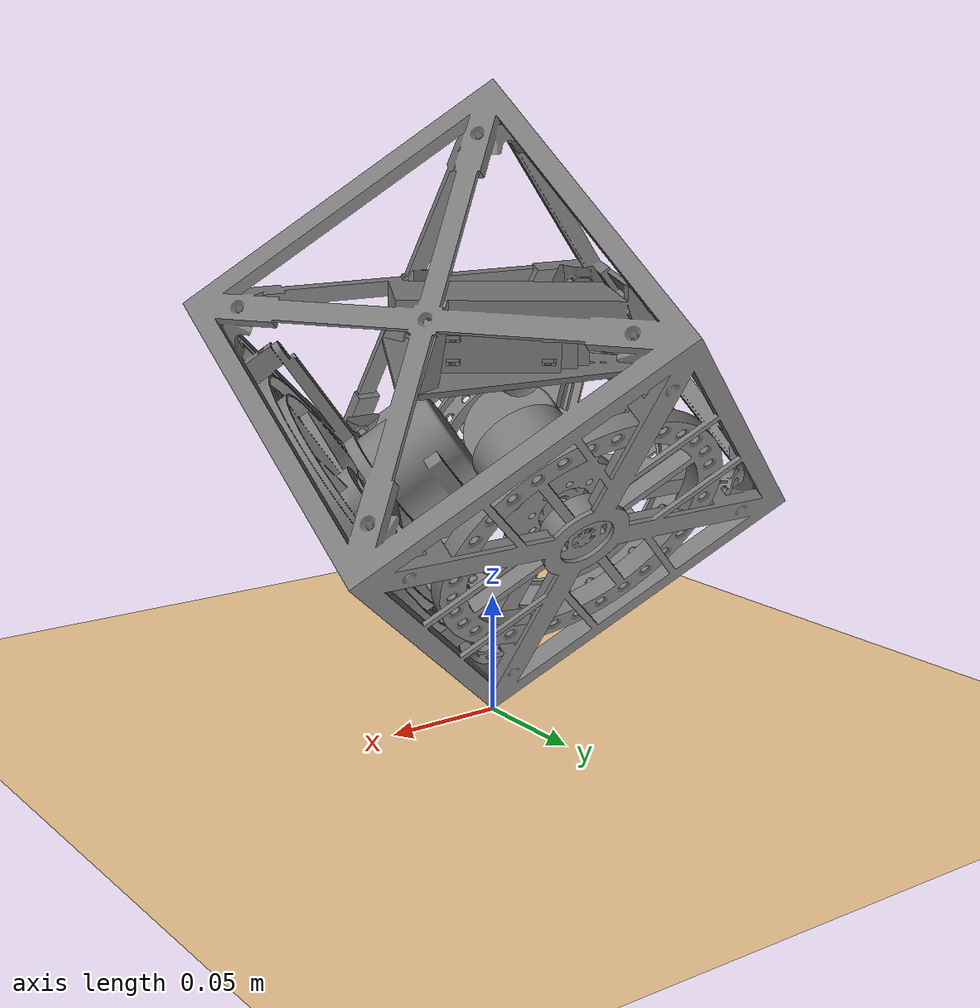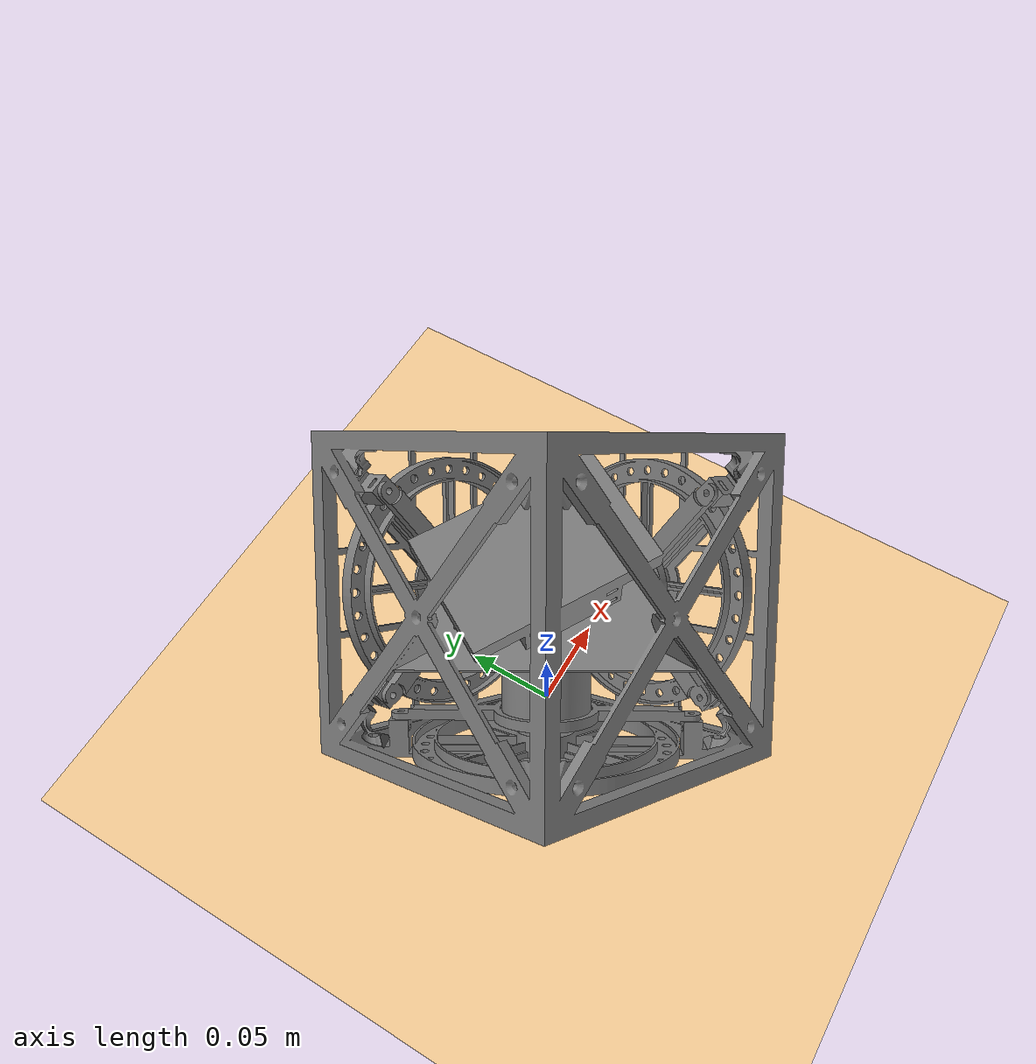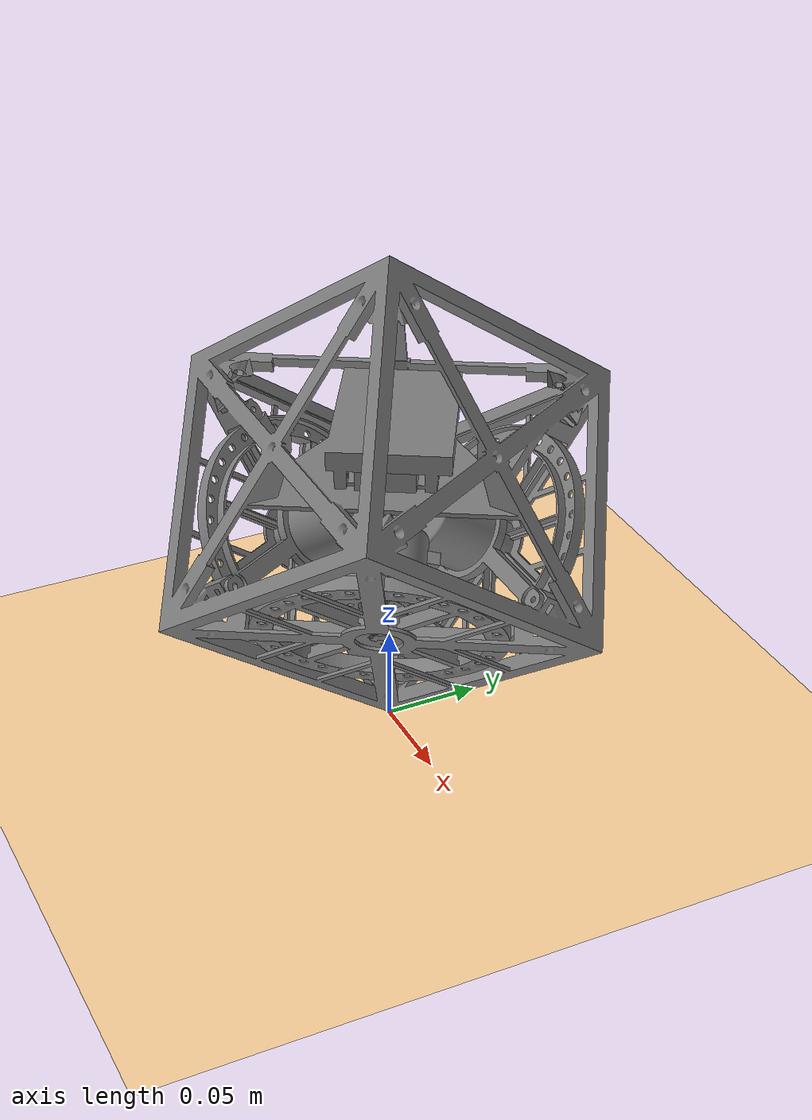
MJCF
<mujoco model="The_Cube">
    <compiler angle="radian" eulerseq="XYZ" inertiafromgeom="true"/>
    <option cone="elliptic"/>
    <asset>
        <mesh name="base_link" file="meshes/base_link.stl" scale="0.001 0.001 0.001" />
        <mesh name="reaction_wheel_3" file="meshes/reaction_wheel_3.stl" scale="0.001 0.001 0.001" />
        <mesh name="reaction_wheel_1" file="meshes/reaction_wheel_1.stl" scale="0.001 0.001 0.001" />
        <mesh name="reaction_wheel_2" file="meshes/reaction_wheel_2.stl" scale="0.001 0.001 0.001" />
        <mesh name="MPU6050" file="meshes/MPU6050.stl" scale="0.001 0.001 0.001"/>
        <mesh name="DCmotor_1" file="meshes/DCmotor_1.stl" scale="0.001 0.001 0.001"/>
        <mesh name="DCmotor_2" file="meshes/DCmotor_2.stl" scale="0.001 0.001 0.001"/>
        <mesh name="DCmotor_3" file="meshes/DCmotor_3.stl" scale="0.001 0.001 0.001"/>
        <mesh name="battery" file="meshes/battery.stl" scale="0.001 0.001 0.001"/>
    </asset>
    <worldbody>
        <light directional="true" pos="-0.5 0.5 3" dir="0 0 -1" />
        <geom pos="0 0 0" size="1 1 1" type="plane" rgba="1 0.83 0.61 0.5" />
        <body name="base_link" pos="-2.366296991572179e-17 8.984428253791882e-18 9.821610693594415e-18" euler="0.7853981633974474 -0.6154729074232795 -1.5707963267948961">
            <joint name="base_link" type="ball" />
            <geom name="base_link_geom" type="mesh" mesh="base_link" pos="0 0 0" euler="0 0 0" contype="0" conaffinity="0"/>
            <geom type="box" size="0.076 0.076 0.076" pos="0.076 0.076 0.076" mass="0.362" rgba="0 0 0 0"/>
            <body name="MPU6050" pos="0.07945692206587694 0.0794907646787547 0.09236623966255973" euler="3.3861802251067243e-15 3.1086244689504356e-15 -6.938893903907222e-15">
                <geom name="MPU6050_geom" type="mesh" mesh="MPU6050" pos="0 0 0" euler="0 0 0" mass="0.00282" contype="0" conaffinity="0"/>
                <site name="MPU6050" pos="0 0 0" size="0.01"/>
            </body>
            <body name="battery" pos="2.220446114900651e-17 7.105427357601002e-17 -1.1618931845494013e-17" euler="-0.78539816339744 7.882841819887513e-15 -0.7853981633974543">
                <geom name="battery_geom" type="mesh" mesh="battery" pos="0 0 0" euler="0 0 0" mass="0.049" contype="0" conaffinity="0"/>
            </body>
            <body name="DCmotor_1" pos="0.0021999968702095902 0.07600355144673097 0.07599645767775352" euler="-0.7853981633974476 1.1687352135885348e-15 -0.7853981633974547">
                <geom name="DCmotor_1_geom" type="mesh" mesh="DCmotor_1" pos="0 0 0" euler="0 0 0" mass="0.11" contype="0" conaffinity="0"/>
                <body name="reaction_wheel_1" pos="4.888976135219991e-07 -1.4324117880715193e-07 -5.481644955018794e-07" euler="0.9553166952023286 -0.5235987325034739 2.5261129030283587">
                    <joint name="Joint1" type="hinge" axis="0 0 1" pos="8.430785904720072e-07 4.60698196180371e-07 -2.2582937499535663e-08" />
                    <geom name="reaction_wheel_1_geom" type="mesh" mesh="reaction_wheel_1" pos="0 0 0" euler="0 0 0" contype="0" conaffinity="0"/>
                    <geom type="cylinder" size="0.0632 0.0035" pos="0 0 0.007" euler="0 0 0" mass="0.735" contype="0" conaffinity="0" rgba="0 0 0 0"/>
                </body>
            </body>
            <body name="DCmotor_2" pos="0.076003551486097 0.002199996871058961 0.07599644531936388" euler="-0.7853981633974322 1.9697962946635538e-16 -0.7853981633974545">
                <geom name="DCmotor_2_geom" type="mesh" mesh="DCmotor_2" pos="0 0 0" euler="0 0 0" mass="0.11" contype="0" conaffinity="0"/>
                <body name="reaction_wheel_2" pos="4.888968830840668e-07 5.481621855829566e-07 1.4324245576347038e-07" euler="0.9553165455162198 0.5235988241671399 -2.5261129778713993">
                    <joint name="Joint2" type="hinge" axis="0 0 1" pos="5.48564712214651e-07 6.100682713129193e-08 -2.689781667645634e-07" />
                    <geom name="reaction_wheel_2_geom" type="mesh" mesh="reaction_wheel_2" pos="0 0 0" euler="0 0 0" contype="0" conaffinity="0"/>
                    <geom type="cylinder" size="0.0632 0.0035" pos="0 0 0.007" euler="0 0 0" mass="0.735" contype="0" conaffinity="0" rgba="0 0 0 0"/>
                </body>
            </body>
            <body name="DCmotor_3" pos="0.07600355246351696 0.07600355225119587 0.0021999968710591407" euler="-0.7853981633974394 8.715250743307479e-15 -1.5707963267948972">
                <geom name="DCmotor_3_geom" type="mesh" mesh="DCmotor_3" pos="0 0 0" euler="0 0 0" mass="0.11" contype="0" conaffinity="0"/>
                <body name="reaction_wheel_3" pos="-4.963183517592284e-07 8.463956386517424e-07 8.463957369375663e-07" euler="-0.7853982064411122 -2.5695820193849554e-08 -3.1415926278939708">
                    <joint name="Joint3" type="hinge" axis="0 0 1" pos="-7.588857187373443e-07 1.195244443711477e-06 -2.7036677553459686e-07" />
                    <geom name="reaction_wheel_3_geom" type="mesh" mesh="reaction_wheel_3" pos="0 0 0" euler="0 0 0" contype="0" conaffinity="0"/>
                    <geom type="cylinder" size="0.0632 0.0035" pos="0 0 0.007" euler="0 0 0" mass="0.735" contype="0" conaffinity="0" rgba="0 0 0 0"/>
                </body>
            </body>
        </body>
    </worldbody>
    <actuator>
        <general name="v1" joint="Joint1" gaintype="fixed" gainprm="0.06" biastype="affine" biasprm="0 0 0" forcerange="-0.06 0.06" ctrllimited="true" ctrlrange="-1.0 1.0"/>
        <general name="v2" joint="Joint2" gaintype="fixed" gainprm="0.06" biastype="affine" biasprm="0 0 0" forcerange="-0.06 0.06" ctrllimited="true" ctrlrange="-1.0 1.0"/>
        <general name="v3" joint="Joint3" gaintype="fixed" gainprm="0.06" biastype="affine" biasprm="0 0 0" forcerange="-0.06 0.06" ctrllimited="true" ctrlrange="-1.0 1.0"/>
    </actuator>
    <sensor>
        <gyro name="imu_gyro" site="MPU6050" />
        <accelerometer name="imu_accel" site="MPU6050" />
        <actuatorvel name="rw1_speed" actuator="v1" />
        <actuatorvel name="rw2_speed" actuator="v2" />
        <actuatorvel name="rw3_speed" actuator="v3" />
    </sensor>
</mujoco>
